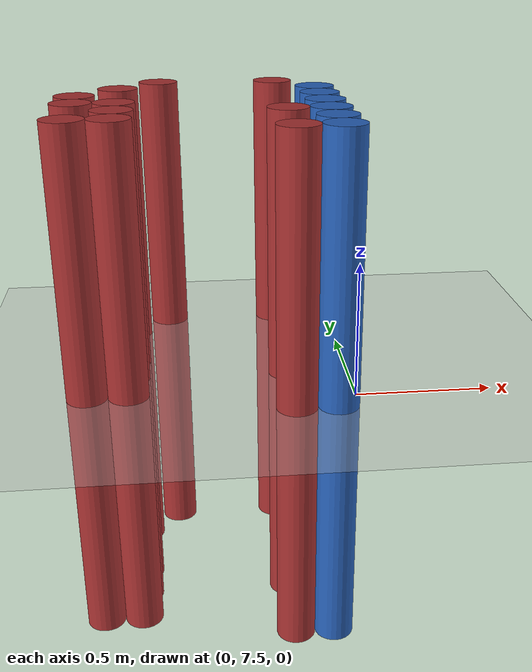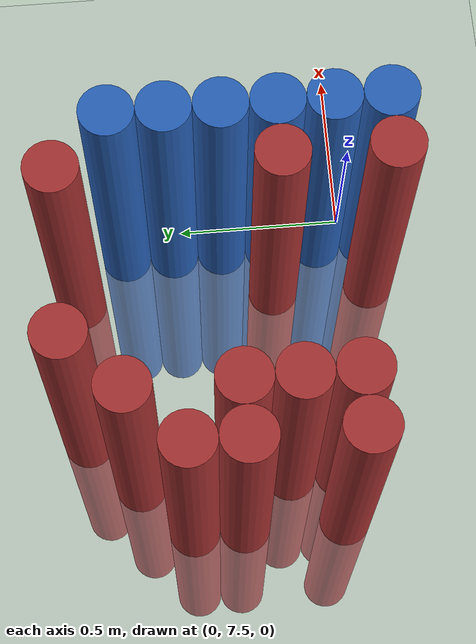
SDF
<sdf version="1.6">
 <world name="default">
  <model name="ground_plane">
   <static>1</static>
   <link name="link">
    <collision name="collision">
     <geometry><plane><normal>0 0 1</normal><size>100 100</size></plane></geometry>
     <surface><friction><ode><mu>100</mu><mu2>50</mu2></ode></friction></surface>
    </collision>
    <visual name="visual">
     <cast_shadows>0</cast_shadows>
     <geometry><plane><normal>0 0 1</normal><size>100 100</size></plane></geometry>
     <material>
      <script><uri>file://media/materials/scripts/gazebo.material</uri><name>Gazebo/Grey</name></script>
     </material>
    </visual>
   </link>
  </model>
  <model name="unit_cylinder_199">
   <static>1</static>
   <pose>-0.975000 7.575000 0.000000 0.000000 0.000000 0.000000</pose>
   <link name="link">
    <inertial>
     <mass>1</mass>
     <inertia><ixx>0.145833</ixx><ixy>0</ixy><ixz>0</ixz><iyy>0.145833</iyy><iyz>0</iyz><izz>0.125</izz></inertia>
    </inertial>
    <collision name="collision">
     <geometry><cylinder><radius>0.075000</radius><length>2</length></cylinder></geometry>
    </collision>
    <visual name="visual">
     <geometry><cylinder><radius>0.075000</radius><length>2</length></cylinder></geometry>
     <material>
      <ambient>0.648000 0.192000 0.192000 1</ambient>
      <diffuse>0.648000 0.192000 0.192000 1</diffuse>
     </material>
     <material>
      <script><name>Gazebo/Grey</name><uri>file://media/materials/scripts/gazebo.material</uri></script>
     </material>
    </visual>
   </link>
  </model>
  <model name="unit_cylinder_200">
   <static>1</static>
   <pose>-0.975000 7.875000 0.000000 0.000000 0.000000 0.000000</pose>
   <link name="link">
    <inertial>
     <mass>1</mass>
     <inertia><ixx>0.145833</ixx><ixy>0</ixy><ixz>0</ixz><iyy>0.145833</iyy><iyz>0</iyz><izz>0.125</izz></inertia>
    </inertial>
    <collision name="collision">
     <geometry><cylinder><radius>0.075000</radius><length>2</length></cylinder></geometry>
    </collision>
    <visual name="visual">
     <geometry><cylinder><radius>0.075000</radius><length>2</length></cylinder></geometry>
     <material>
      <ambient>0.648000 0.192000 0.192000 1</ambient>
      <diffuse>0.648000 0.192000 0.192000 1</diffuse>
     </material>
     <material>
      <script><name>Gazebo/Grey</name><uri>file://media/materials/scripts/gazebo.material</uri></script>
     </material>
    </visual>
   </link>
  </model>
  <model name="unit_cylinder_201">
   <static>1</static>
   <pose>-0.975000 8.025000 0.000000 0.000000 0.000000 0.000000</pose>
   <link name="link">
    <inertial>
     <mass>1</mass>
     <inertia><ixx>0.145833</ixx><ixy>0</ixy><ixz>0</ixz><iyy>0.145833</iyy><iyz>0</iyz><izz>0.125</izz></inertia>
    </inertial>
    <collision name="collision">
     <geometry><cylinder><radius>0.075000</radius><length>2</length></cylinder></geometry>
    </collision>
    <visual name="visual">
     <geometry><cylinder><radius>0.075000</radius><length>2</length></cylinder></geometry>
     <material>
      <ambient>0.648000 0.192000 0.192000 1</ambient>
      <diffuse>0.648000 0.192000 0.192000 1</diffuse>
     </material>
     <material>
      <script><name>Gazebo/Grey</name><uri>file://media/materials/scripts/gazebo.material</uri></script>
     </material>
    </visual>
   </link>
  </model>
  <model name="unit_cylinder_206">
   <static>1</static>
   <pose>-0.825000 7.575000 0.000000 0.000000 0.000000 0.000000</pose>
   <link name="link">
    <inertial>
     <mass>1</mass>
     <inertia><ixx>0.145833</ixx><ixy>0</ixy><ixz>0</ixz><iyy>0.145833</iyy><iyz>0</iyz><izz>0.125</izz></inertia>
    </inertial>
    <collision name="collision">
     <geometry><cylinder><radius>0.075000</radius><length>2</length></cylinder></geometry>
    </collision>
    <visual name="visual">
     <geometry><cylinder><radius>0.075000</radius><length>2</length></cylinder></geometry>
     <material>
      <ambient>0.648000 0.192000 0.192000 1</ambient>
      <diffuse>0.648000 0.192000 0.192000 1</diffuse>
     </material>
     <material>
      <script><name>Gazebo/Grey</name><uri>file://media/materials/scripts/gazebo.material</uri></script>
     </material>
    </visual>
   </link>
  </model>
  <model name="unit_cylinder_207">
   <static>1</static>
   <pose>-0.825000 7.725000 0.000000 0.000000 0.000000 0.000000</pose>
   <link name="link">
    <inertial>
     <mass>1</mass>
     <inertia><ixx>0.145833</ixx><ixy>0</ixy><ixz>0</ixz><iyy>0.145833</iyy><iyz>0</iyz><izz>0.125</izz></inertia>
    </inertial>
    <collision name="collision">
     <geometry><cylinder><radius>0.075000</radius><length>2</length></cylinder></geometry>
    </collision>
    <visual name="visual">
     <geometry><cylinder><radius>0.075000</radius><length>2</length></cylinder></geometry>
     <material>
      <ambient>0.648000 0.192000 0.192000 1</ambient>
      <diffuse>0.648000 0.192000 0.192000 1</diffuse>
     </material>
     <material>
      <script><name>Gazebo/Grey</name><uri>file://media/materials/scripts/gazebo.material</uri></script>
     </material>
    </visual>
   </link>
  </model>
  <model name="unit_cylinder_208">
   <static>1</static>
   <pose>-0.825000 7.875000 0.000000 0.000000 0.000000 0.000000</pose>
   <link name="link">
    <inertial>
     <mass>1</mass>
     <inertia><ixx>0.145833</ixx><ixy>0</ixy><ixz>0</ixz><iyy>0.145833</iyy><iyz>0</iyz><izz>0.125</izz></inertia>
    </inertial>
    <collision name="collision">
     <geometry><cylinder><radius>0.075000</radius><length>2</length></cylinder></geometry>
    </collision>
    <visual name="visual">
     <geometry><cylinder><radius>0.075000</radius><length>2</length></cylinder></geometry>
     <material>
      <ambient>0.648000 0.192000 0.192000 1</ambient>
      <diffuse>0.648000 0.192000 0.192000 1</diffuse>
     </material>
     <material>
      <script><name>Gazebo/Grey</name><uri>file://media/materials/scripts/gazebo.material</uri></script>
     </material>
    </visual>
   </link>
  </model>
  <model name="unit_cylinder_209">
   <static>1</static>
   <pose>-0.825000 8.175000 0.000000 0.000000 0.000000 0.000000</pose>
   <link name="link">
    <inertial>
     <mass>1</mass>
     <inertia><ixx>0.145833</ixx><ixy>0</ixy><ixz>0</ixz><iyy>0.145833</iyy><iyz>0</iyz><izz>0.125</izz></inertia>
    </inertial>
    <collision name="collision">
     <geometry><cylinder><radius>0.075000</radius><length>2</length></cylinder></geometry>
    </collision>
    <visual name="visual">
     <geometry><cylinder><radius>0.075000</radius><length>2</length></cylinder></geometry>
     <material>
      <ambient>0.648000 0.192000 0.192000 1</ambient>
      <diffuse>0.648000 0.192000 0.192000 1</diffuse>
     </material>
     <material>
      <script><name>Gazebo/Grey</name><uri>file://media/materials/scripts/gazebo.material</uri></script>
     </material>
    </visual>
   </link>
  </model>
  <model name="unit_cylinder_215">
   <static>1</static>
   <pose>-0.675000 8.325000 0.000000 0.000000 0.000000 0.000000</pose>
   <link name="link">
    <inertial>
     <mass>1</mass>
     <inertia><ixx>0.145833</ixx><ixy>0</ixy><ixz>0</ixz><iyy>0.145833</iyy><iyz>0</iyz><izz>0.125</izz></inertia>
    </inertial>
    <collision name="collision">
     <geometry><cylinder><radius>0.075000</radius><length>2</length></cylinder></geometry>
    </collision>
    <visual name="visual">
     <geometry><cylinder><radius>0.075000</radius><length>2</length></cylinder></geometry>
     <material>
      <ambient>0.648000 0.192000 0.192000 1</ambient>
      <diffuse>0.648000 0.192000 0.192000 1</diffuse>
     </material>
     <material>
      <script><name>Gazebo/Grey</name><uri>file://media/materials/scripts/gazebo.material</uri></script>
     </material>
    </visual>
   </link>
  </model>
  <model name="unit_cylinder_237">
   <static>1</static>
   <pose>-0.225000 7.425000 0.000000 0.000000 0.000000 0.000000</pose>
   <link name="link">
    <inertial>
     <mass>1</mass>
     <inertia><ixx>0.145833</ixx><ixy>0</ixy><ixz>0</ixz><iyy>0.145833</iyy><iyz>0</iyz><izz>0.125</izz></inertia>
    </inertial>
    <collision name="collision">
     <geometry><cylinder><radius>0.075000</radius><length>2</length></cylinder></geometry>
    </collision>
    <visual name="visual">
     <geometry><cylinder><radius>0.075000</radius><length>2</length></cylinder></geometry>
     <material>
      <ambient>0.648000 0.192000 0.192000 1</ambient>
      <diffuse>0.648000 0.192000 0.192000 1</diffuse>
     </material>
     <material>
      <script><name>Gazebo/Grey</name><uri>file://media/materials/scripts/gazebo.material</uri></script>
     </material>
    </visual>
   </link>
  </model>
  <model name="unit_cylinder_238">
   <static>1</static>
   <pose>-0.225000 7.725000 0.000000 0.000000 0.000000 0.000000</pose>
   <link name="link">
    <inertial>
     <mass>1</mass>
     <inertia><ixx>0.145833</ixx><ixy>0</ixy><ixz>0</ixz><iyy>0.145833</iyy><iyz>0</iyz><izz>0.125</izz></inertia>
    </inertial>
    <collision name="collision">
     <geometry><cylinder><radius>0.075000</radius><length>2</length></cylinder></geometry>
    </collision>
    <visual name="visual">
     <geometry><cylinder><radius>0.075000</radius><length>2</length></cylinder></geometry>
     <material>
      <ambient>0.648000 0.192000 0.192000 1</ambient>
      <diffuse>0.648000 0.192000 0.192000 1</diffuse>
     </material>
     <material>
      <script><name>Gazebo/Grey</name><uri>file://media/materials/scripts/gazebo.material</uri></script>
     </material>
    </visual>
   </link>
  </model>
  <model name="unit_cylinder_239">
   <static>1</static>
   <pose>-0.225000 8.325000 0.000000 0.000000 0.000000 0.000000</pose>
   <link name="link">
    <inertial>
     <mass>1</mass>
     <inertia><ixx>0.145833</ixx><ixy>0</ixy><ixz>0</ixz><iyy>0.145833</iyy><iyz>0</iyz><izz>0.125</izz></inertia>
    </inertial>
    <collision name="collision">
     <geometry><cylinder><radius>0.075000</radius><length>2</length></cylinder></geometry>
    </collision>
    <visual name="visual">
     <geometry><cylinder><radius>0.075000</radius><length>2</length></cylinder></geometry>
     <material>
      <ambient>0.648000 0.192000 0.192000 1</ambient>
      <diffuse>0.648000 0.192000 0.192000 1</diffuse>
     </material>
     <material>
      <script><name>Gazebo/Grey</name><uri>file://media/materials/scripts/gazebo.material</uri></script>
     </material>
    </visual>
   </link>
  </model>
  <model name="unit_cylinder_261">
   <static>1</static>
   <pose>-0.075000 7.425000 0.000000 0.000000 0.000000 0.000000</pose>
   <link name="link">
    <inertial>
     <mass>1</mass>
     <inertia><ixx>0.145833</ixx><ixy>0</ixy><ixz>0</ixz><iyy>0.145833</iyy><iyz>0</iyz><izz>0.125</izz></inertia>
    </inertial>
    <collision name="collision">
     <geometry><cylinder><radius>0.075000</radius><length>2</length></cylinder></geometry>
    </collision>
    <visual name="visual">
     <geometry><cylinder><radius>0.075000</radius><length>2</length></cylinder></geometry>
     <material>
      <ambient>0.152000 0.379000 0.720000 1</ambient>
      <diffuse>0.152000 0.379000 0.720000 1</diffuse>
     </material>
     <material>
      <script><name>Gazebo/Grey</name><uri>file://media/materials/scripts/gazebo.material</uri></script>
     </material>
    </visual>
   </link>
  </model>
  <model name="unit_cylinder_262">
   <static>1</static>
   <pose>-0.075000 7.575000 0.000000 0.000000 0.000000 0.000000</pose>
   <link name="link">
    <inertial>
     <mass>1</mass>
     <inertia><ixx>0.145833</ixx><ixy>0</ixy><ixz>0</ixz><iyy>0.145833</iyy><iyz>0</iyz><izz>0.125</izz></inertia>
    </inertial>
    <collision name="collision">
     <geometry><cylinder><radius>0.075000</radius><length>2</length></cylinder></geometry>
    </collision>
    <visual name="visual">
     <geometry><cylinder><radius>0.075000</radius><length>2</length></cylinder></geometry>
     <material>
      <ambient>0.152000 0.379000 0.720000 1</ambient>
      <diffuse>0.152000 0.379000 0.720000 1</diffuse>
     </material>
     <material>
      <script><name>Gazebo/Grey</name><uri>file://media/materials/scripts/gazebo.material</uri></script>
     </material>
    </visual>
   </link>
  </model>
  <model name="unit_cylinder_263">
   <static>1</static>
   <pose>-0.075000 7.725000 0.000000 0.000000 0.000000 0.000000</pose>
   <link name="link">
    <inertial>
     <mass>1</mass>
     <inertia><ixx>0.145833</ixx><ixy>0</ixy><ixz>0</ixz><iyy>0.145833</iyy><iyz>0</iyz><izz>0.125</izz></inertia>
    </inertial>
    <collision name="collision">
     <geometry><cylinder><radius>0.075000</radius><length>2</length></cylinder></geometry>
    </collision>
    <visual name="visual">
     <geometry><cylinder><radius>0.075000</radius><length>2</length></cylinder></geometry>
     <material>
      <ambient>0.152000 0.379000 0.720000 1</ambient>
      <diffuse>0.152000 0.379000 0.720000 1</diffuse>
     </material>
     <material>
      <script><name>Gazebo/Grey</name><uri>file://media/materials/scripts/gazebo.material</uri></script>
     </material>
    </visual>
   </link>
  </model>
  <model name="unit_cylinder_264">
   <static>1</static>
   <pose>-0.075000 7.875000 0.000000 0.000000 0.000000 0.000000</pose>
   <link name="link">
    <inertial>
     <mass>1</mass>
     <inertia><ixx>0.145833</ixx><ixy>0</ixy><ixz>0</ixz><iyy>0.145833</iyy><iyz>0</iyz><izz>0.125</izz></inertia>
    </inertial>
    <collision name="collision">
     <geometry><cylinder><radius>0.075000</radius><length>2</length></cylinder></geometry>
    </collision>
    <visual name="visual">
     <geometry><cylinder><radius>0.075000</radius><length>2</length></cylinder></geometry>
     <material>
      <ambient>0.152000 0.379000 0.720000 1</ambient>
      <diffuse>0.152000 0.379000 0.720000 1</diffuse>
     </material>
     <material>
      <script><name>Gazebo/Grey</name><uri>file://media/materials/scripts/gazebo.material</uri></script>
     </material>
    </visual>
   </link>
  </model>
  <model name="unit_cylinder_265">
   <static>1</static>
   <pose>-0.075000 8.025000 0.000000 0.000000 0.000000 0.000000</pose>
   <link name="link">
    <inertial>
     <mass>1</mass>
     <inertia><ixx>0.145833</ixx><ixy>0</ixy><ixz>0</ixz><iyy>0.145833</iyy><iyz>0</iyz><izz>0.125</izz></inertia>
    </inertial>
    <collision name="collision">
     <geometry><cylinder><radius>0.075000</radius><length>2</length></cylinder></geometry>
    </collision>
    <visual name="visual">
     <geometry><cylinder><radius>0.075000</radius><length>2</length></cylinder></geometry>
     <material>
      <ambient>0.152000 0.379000 0.720000 1</ambient>
      <diffuse>0.152000 0.379000 0.720000 1</diffuse>
     </material>
     <material>
      <script><name>Gazebo/Grey</name><uri>file://media/materials/scripts/gazebo.material</uri></script>
     </material>
    </visual>
   </link>
  </model>
  <model name="unit_cylinder_266">
   <static>1</static>
   <pose>-0.075000 8.175000 0.000000 0.000000 0.000000 0.000000</pose>
   <link name="link">
    <inertial>
     <mass>1</mass>
     <inertia><ixx>0.145833</ixx><ixy>0</ixy><ixz>0</ixz><iyy>0.145833</iyy><iyz>0</iyz><izz>0.125</izz></inertia>
    </inertial>
    <collision name="collision">
     <geometry><cylinder><radius>0.075000</radius><length>2</length></cylinder></geometry>
    </collision>
    <visual name="visual">
     <geometry><cylinder><radius>0.075000</radius><length>2</length></cylinder></geometry>
     <material>
      <ambient>0.152000 0.379000 0.720000 1</ambient>
      <diffuse>0.152000 0.379000 0.720000 1</diffuse>
     </material>
     <material>
      <script><name>Gazebo/Grey</name><uri>file://media/materials/scripts/gazebo.material</uri></script>
     </material>
    </visual>
   </link>
  </model>
 </world>
</sdf>
